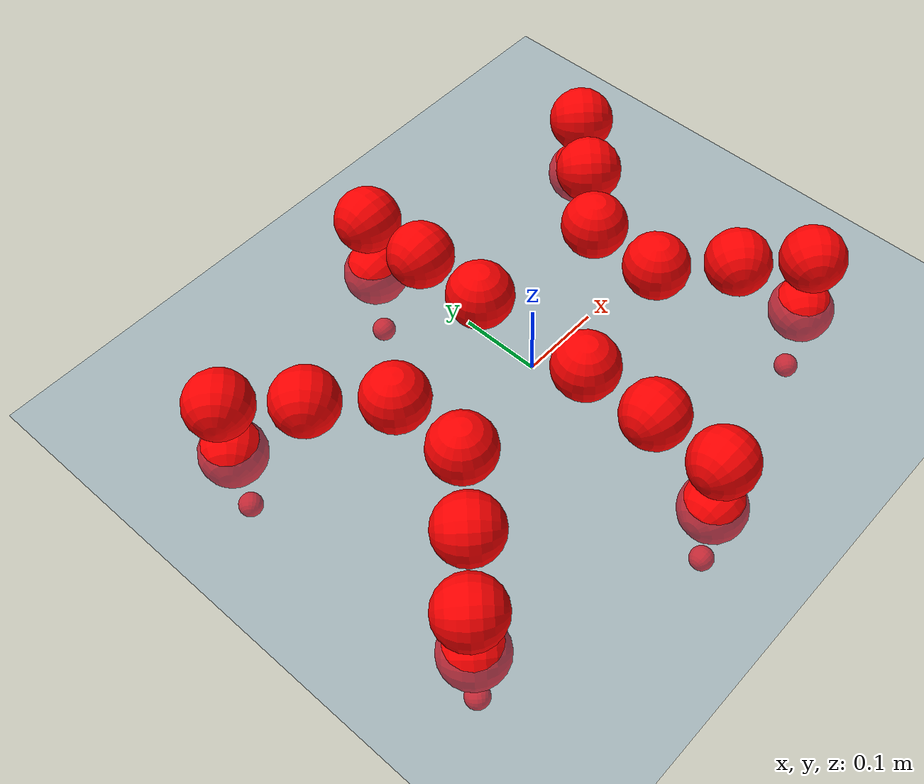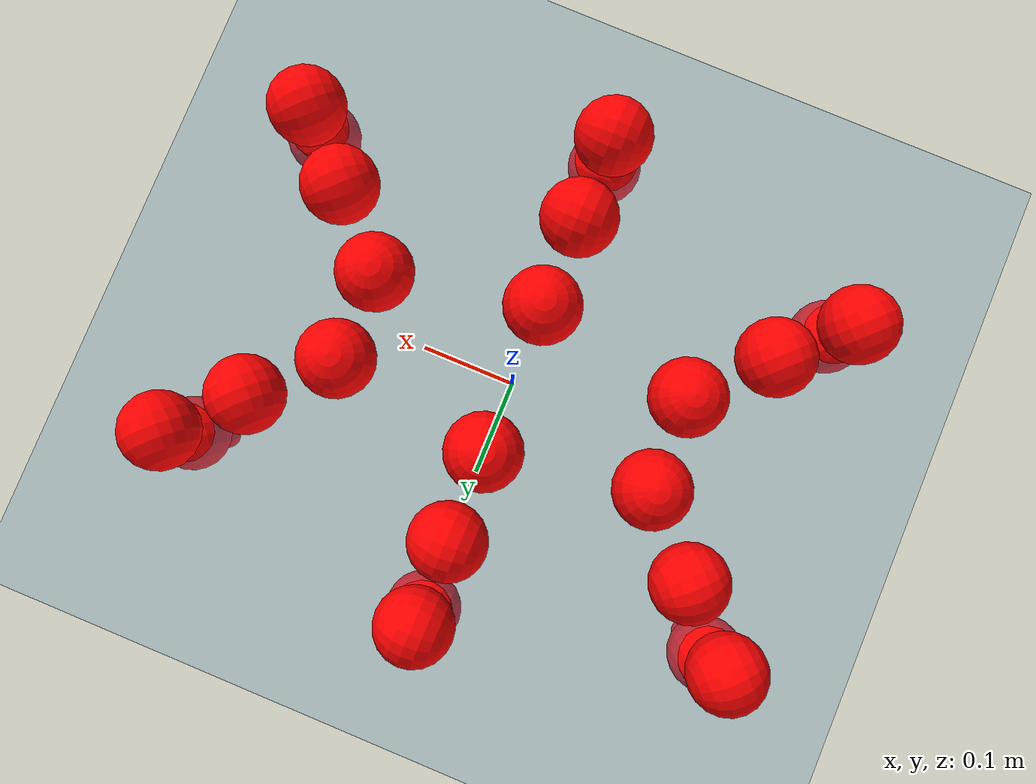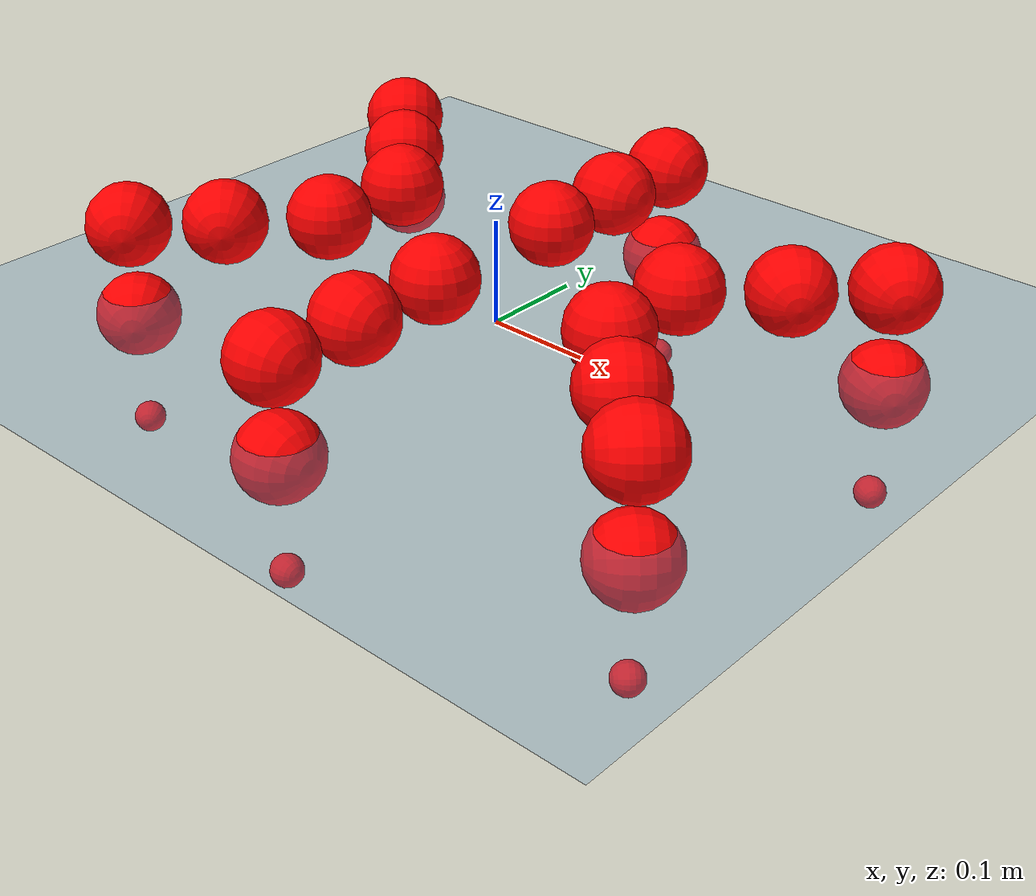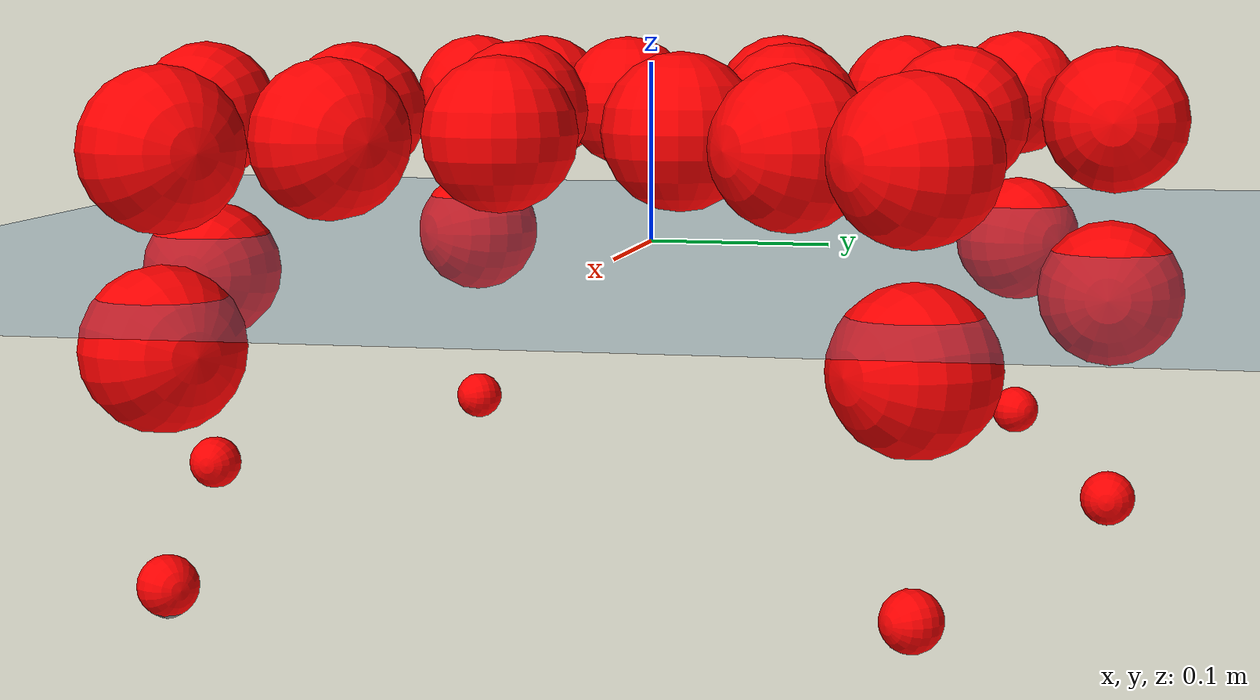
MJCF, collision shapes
<mujoco model="Golem">
  <compiler angle="radian" assetdir="assets" balanceinertia="true" inertiafromgeom="false"/>

  <option timestep="0.005" density="1.2" viscosity="2e-05"/>

  <size nkey="1"/>

  <visual>
    <quality shadowsize="8192"/>
    <map shadowclip="0.5"/>
  </visual>

  <default>
    <default class="/">
      <joint armature="0.01" damping="0.01" frictionloss="0.01"/>
      <geom contype="0" conaffinity="0" group="1" solref="-1000 -80"/>
      <site size="0.01 0.005 0.005" group="5"/>
      <general forcelimited="true" biastype="affine" gainprm="25" biasprm="0 -25 -0.5"/>
      <default class="visual">
        <geom type="mesh" group="2"/>
      </default>
      <default class="collision">
        <geom group="3"/>
      </default>
      <default class="foot">
        <geom size="0.01 0 0" condim="6" group="4" priority="1" solimp="0.015 1 0.01"/>
      </default>
      <default class="reward_collision_sphere">
        <geom group="5" rgba="1 0 0 1"/>
      </default>
    </default>
  </default>

  <asset>
    <texture type="skybox" colorspace="auto" name="//unnamed_texture_0" builtin="gradient" rgb1="0.95 0.95 0.95" rgb2="0.95 0.95 0.95" width="100" height="600"/>
    <texture type="2d" colorspace="auto" name="texplane" builtin="checker" rgb1="0.345 0.575 0.748" rgb2="0.345 0.575 0.748" markrgb="1 1 1" width="512" height="512"/>
    <material name="MatPlane" class="/" texture="texplane" texuniform="true" texrepeat="2 2" specular="0.9"/>
    <mesh name="body" class="/" file="body.stl" scale="0.001 0.001 0.001"/>
    <mesh name="coxa" class="/" file="coxa.stl" scale="0.001 0.001 0.001"/>
    <mesh name="femur" class="/" file="femur.stl" scale="0.001 0.001 0.001"/>
    <mesh name="tibia" class="/" file="tibia.stl" scale="0.001 0.001 0.001"/>
    <mesh name="tarsus" class="/" file="tarsus.stl" scale="0.001 0.001 0.001"/>
  </asset>

  <worldbody>
    <geom name="floor" class="/" size="100 100 0.125" type="plane" group="0" material="MatPlane"/>
    <light name="toplight_shadow" class="/" pos="0 0 5" dir="0.0990148 0.0990148 -0.990148" type="directional" ambient="0.04 0.04 0.04" diffuse="0.55 0.55 0.55" specular="0.12 0.12 0.12"/>
    <light name="toplight_fill" class="/" pos="0 0 5" dir="0.0990148 0.0990148 -0.990148" type="directional" castshadow="false" ambient="0.04 0.04 0.04" diffuse="0.3 0.3 0.3" specular="0.08 0.08 0.08"/>
    <body name="trunk" pos="-0.000315772 0.000114913 -0.000260632" quat="1 0.000126382 0.000300902 -0.000297984">
      <inertial pos="0.000644188 -2.64306e-06 -0.00498124" quat="1 -1.75654e-05 1.15987e-05 -1.2524e-05" mass="3.63851" diaginertia="0.0131311 0.00386684 0.0170858"/>
      <joint name="//unnamed_joint_0" type="free"/>
      <geom name="//unnamed_geom_1" class="/" pos="0 0 0.071203" quat="1 0 0 0" type="mesh" rgba="0.9 0.9 0.9 1" mesh="body"/>
      <site name="imu" class="/" pos="0.144927 0.00150443 0.112828" size="0.00999437"/>
      <camera name="track" class="/" pos="0 -1.65808 0" quat="0.707107 0.707107 0 0" mode="trackcom"/>
      <camera name="ego_camera" class="/" pos="0.137374 0 0.111255" quat="-0.5 -0.5 0.5 0.5"/>
      <body name="coxa_RR" pos="-0.187224 -0.0705383 0.070636" quat="0.382248 6.88792e-05 -0.000216726 -0.92406">
        <inertial pos="1.51452e-05 0.000128687 -0.000341543" quat="0.999999 -0.000641922 0.000640012 -0.00124096" mass="0.197435" diaginertia="0.0130169 0.00390167 0.0163368"/>
        <joint name="coxa_joint_RR" class="/" pos="0 0 0" axis="0.000892105 -0.00292698 -0.999995" range="-3.13582 3.15719" armature="0.00993509" damping="0.0104828" frictionloss="0.00971841"/>
        <geom name="//unnamed_geom_2" class="/" type="mesh" rgba="0.2 0.2 0.2 1" mesh="coxa"/>
        <geom name="//unnamed_geom_3" class="reward_collision_sphere" size="0.0399775" pos="-0.0317017 0 0"/>
        <body name="femur_RR" pos="0.0638352 0.00302839 -0.00131164" quat="0.499983 -0.500031 0.500042 0.499945">
          <inertial pos="-0.00236573 -0.000150644 -0.00256234" quat="0.999925 -0.00291267 0.0085588 0.00821618" mass="0.196132" diaginertia="0.0129873 0.0038399 0.0166582"/>
          <joint name="femur_joint_RR" class="/" pos="0 0 0" axis="-0.00466213 0.00210032 -0.999987" stiffness="0.00538697" range="-3.12099 3.13425" armature="0.0097395" damping="0" frictionloss="0.0100388"/>
          <geom name="//unnamed_geom_4" class="/" type="mesh" rgba="0.9 0.9 0.9 1" mesh="femur"/>
          <geom name="//unnamed_geom_5" class="reward_collision_sphere" size="0.0399775"/>
          <body name="tibia_RR" pos="0.00164602 -0.0892348 -0.00172512" quat="-0.00026977 1 -2.04863e-05 -0.000312738">
            <inertial pos="-0.000250478 0.000143964 -0.00171513" quat="1 0.000100784 -0.000754739 7.26476e-05" mass="0.203655" diaginertia="0.0136589 0.00408506 0.0176141"/>
            <joint name="tibia_joint_RR" class="/" pos="0 0 0" axis="0.00645109 0.00499063 0.999967" range="-3.13818 3.13979" armature="0.0103515" damping="0.00183092" frictionloss="0.0094358"/>
            <geom name="//unnamed_geom_6" class="/" type="mesh" rgba="0.2 0.2 0.2 1" mesh="tibia"/>
            <geom name="//unnamed_geom_7" class="reward_collision_sphere" size="0.0399775"/>
            <body name="tarsus_RR" pos="0.0921511 -0.000649168 -0.000671774" quat="1 -8.02721e-05 5.36298e-05 3.41956e-05">
              <inertial pos="0.0655347 0.000617019 -0.000193389" quat="0.506427 0.501304 0.502181 0.489938" mass="0.205375" diaginertia="0.0129938 0.0039044 0.017379"/>
              <joint name="tarsus_joint_RR" class="/" pos="0 0 0" axis="-0.00369087 0.00671911 0.999971" range="-3.14675 3.13368" armature="0.0104655" damping="0.0407703" frictionloss="0.00953882"/>
              <geom name="//unnamed_geom_8" class="/" type="mesh" rgba="0.9 0.9 0.9 1" mesh="tarsus"/>
              <geom name="foot_1" class="foot" size="0.00977769" pos="0.118353 0 0" quat="0 -0.707107 0 0.707107"/>
              <geom name="//unnamed_geom_10" class="reward_collision_sphere" size="0.0399775"/>
              <geom name="//unnamed_geom_11" class="reward_collision_sphere" size="0.0149916" pos="0.113598 0 0"/>
              <site name="foot_1" class="foot" pos="0.118353 0 0" quat="0 -0.707107 0 0.707107" size="0.00999437"/>
            </body>
          </body>
        </body>
      </body>
      <body name="coxa_RM" pos="0.000138151 -0.10897 0.0724081" quat="0.707525 -0.000990163 -0.000350795 -0.706688">
        <inertial pos="-0.00121544 -0.00021324 -0.00187189" quat="0.999989 -0.00306812 -0.00219535 0.00291076" mass="0.200194" diaginertia="0.0128065 0.00390497 0.0171471"/>
        <joint name="coxa_joint_RM" class="/" pos="0 0 0" axis="0.00242755 6.25975e-05 -0.999997" range="-3.13141 3.12971" armature="0.0100531" damping="0.00954181" frictionloss="0.0104354"/>
        <geom name="//unnamed_geom_12" class="/" type="mesh" rgba="0.2 0.2 0.2 1" mesh="coxa"/>
        <geom name="//unnamed_geom_13" class="reward_collision_sphere" size="0.0399775" pos="-0.0317017 0 0"/>
        <body name="femur_RM" pos="0.0633689 -9.9155e-05 -0.00144685" quat="0.500082 -0.499833 0.500147 0.499937">
          <inertial pos="0.00218386 -0.000409617 -6.44439e-06" quat="0.99993 0.00301018 -0.00391012 0.0107394" mass="0.2012" diaginertia="0.0130321 0.00384723 0.0170299"/>
          <joint name="femur_joint_RM" class="/" pos="0 0 0" axis="0.00627156 -0.00260963 -0.999977" range="-3.14012 3.13764" armature="0.00948152" damping="0.00600506" frictionloss="0.00973878"/>
          <geom name="//unnamed_geom_14" class="/" type="mesh" rgba="0.9 0.9 0.9 1" mesh="femur"/>
          <geom name="//unnamed_geom_15" class="reward_collision_sphere" size="0.0399775"/>
          <body name="tibia_RM" pos="0.000333503 -0.0895823 -0.000644575" quat="6.70733e-05 1 -0.000153158 -0.000130739">
            <inertial pos="-0.00228869 -0.00116359 8.80158e-05" quat="1 -2.23668e-06 2.83743e-05 0.000118813" mass="0.197248" diaginertia="0.0132518 0.00384133 0.0163893"/>
            <joint name="tibia_joint_RM" class="/" pos="0 0 0" axis="-0.000214023 0.000916987 1" range="-3.1345 3.15849" armature="0.0100274" damping="0.0127491" frictionloss="0.0105041"/>
            <geom name="//unnamed_geom_16" class="/" type="mesh" rgba="0.2 0.2 0.2 1" mesh="tibia"/>
            <geom name="//unnamed_geom_17" class="reward_collision_sphere" size="0.0399775"/>
            <body name="tarsus_RM" pos="0.0925488 -0.0011626 0.000158933" quat="1 0.000162198 -1.101e-05 0.000149391">
              <inertial pos="0.0637393 0.000124808 -0.000276445" quat="0.500032 0.498053 0.501121 0.500788" mass="0.19845" diaginertia="0.0127076 0.00387657 0.0170289"/>
              <joint name="tarsus_joint_RM" class="/" pos="0 0 0" axis="-0.00123695 0.00567909 0.999983" range="-3.12856 3.13715" armature="0.00989997" damping="0.0059629" frictionloss="0.0102591"/>
              <geom name="//unnamed_geom_18" class="/" type="mesh" rgba="0.9 0.9 0.9 1" mesh="tarsus"/>
              <geom name="foot_2" class="foot" size="0.00929345" pos="0.118353 0 0" quat="0 -0.707107 0 0.707107"/>
              <geom name="//unnamed_geom_20" class="reward_collision_sphere" size="0.0399775"/>
              <geom name="//unnamed_geom_21" class="reward_collision_sphere" size="0.0149916" pos="0.113598 0 0"/>
              <site name="foot_2" class="foot" pos="0.118353 0 0" quat="0 -0.707107 0 0.707107" size="0.00999437"/>
            </body>
          </body>
        </body>
      </body>
      <body name="coxa_RF" pos="0.188358 -0.0671876 0.0697891" quat="0.923909 0.000241137 0.000221916 -0.382613">
        <inertial pos="-0.00237884 -0.000441566 0.000815147" quat="0.999969 -0.00226242 -0.00332453 -0.00680043" mass="0.20351" diaginertia="0.0130077 0.00376323 0.0167851"/>
        <joint name="coxa_joint_RF" class="/" pos="0 0 0" axis="-0.00105417 0.00238929 -0.999997" range="-3.12088 3.1405" armature="0.0104316" damping="0.0099282" frictionloss="0.0105134"/>
        <geom name="//unnamed_geom_22" class="/" type="mesh" rgba="0.2 0.2 0.2 1" mesh="coxa"/>
        <geom name="//unnamed_geom_23" class="reward_collision_sphere" size="0.0399775" pos="-0.0317017 0 0"/>
        <body name="femur_RF" pos="0.063094 -0.000897818 0.0007194" quat="0.499734 -0.499765 0.500558 0.499942">
          <inertial pos="-0.000306207 0.00219409 -0.000307315" quat="0.999996 -0.00236467 -0.0004683 -0.00135511" mass="0.199059" diaginertia="0.0132474 0.00385169 0.0169954"/>
          <joint name="femur_joint_RF" class="/" pos="0 0 0" axis="0.00123183 -0.000148771 -0.999999" range="-3.14117 3.12919" armature="0.0100737" damping="0.00717737" frictionloss="0.0103914"/>
          <geom name="//unnamed_geom_24" class="/" type="mesh" rgba="0.9 0.9 0.9 1" mesh="femur"/>
          <geom name="//unnamed_geom_25" class="reward_collision_sphere" size="0.0399775"/>
          <body name="tibia_RF" pos="0.00156797 -0.0880151 0.000833282" quat="0.000169062 1 0.000276577 -0.000313352">
            <inertial pos="-0.0016608 -0.00119369 0.00199194" quat="0.999999 0.000491735 -0.00098552 -0.000441071" mass="0.201613" diaginertia="0.0132126 0.00394309 0.0170011"/>
            <joint name="tibia_joint_RF" class="/" pos="0 0 0" axis="-0.000139596 -0.00017935 1" range="-3.1318 3.1198" armature="0.00987527" damping="0.000830679" frictionloss="0.0101987"/>
            <geom name="//unnamed_geom_26" class="/" type="mesh" rgba="0.2 0.2 0.2 1" mesh="tibia"/>
            <geom name="//unnamed_geom_27" class="reward_collision_sphere" size="0.0399775"/>
            <body name="tarsus_RF" pos="0.0937049 0.00187955 -0.00146337" quat="1 -3.88719e-05 -0.000260585 0.000128914">
              <inertial pos="0.0617453 0.000268504 -0.000500729" quat="0.49767 0.500767 0.501456 0.500099" mass="0.196506" diaginertia="0.0130002 0.00402512 0.0167029"/>
              <joint name="tarsus_joint_RF" class="/" pos="0 0 0" axis="0.00729528 -0.00405919 0.999965" range="-3.1308 3.14195" armature="0.0105765" damping="0" frictionloss="0.0112503"/>
              <geom name="//unnamed_geom_28" class="/" type="mesh" rgba="0.9 0.9 0.9 1" mesh="tarsus"/>
              <geom name="foot_3" class="foot" size="0.010812" pos="0.118353 0 0" quat="0 -0.707107 0 0.707107"/>
              <geom name="//unnamed_geom_30" class="reward_collision_sphere" size="0.0399775"/>
              <geom name="//unnamed_geom_31" class="reward_collision_sphere" size="0.0149916" pos="0.113598 0 0"/>
              <site name="foot_3" class="foot" pos="0.118353 0 0" quat="0 -0.707107 0 0.707107" size="0.00999437"/>
            </body>
          </body>
        </body>
      </body>
      <body name="coxa_LR" pos="-0.188191 0.0707937 0.0717661" quat="0.383046 0.000501729 -0.000580871 0.923729">
        <inertial pos="5.27177e-05 -0.00102046 -0.00198323" quat="0.999984 0.000170798 -0.00104477 -0.00554336" mass="0.189722" diaginertia="0.0127409 0.00378277 0.0164186"/>
        <joint name="coxa_joint_LR" class="/" pos="0 0 0" axis="-0.000408245 -0.000470615 -1" range="-3.11996 3.18821" armature="0.0105463" damping="0.0110818" frictionloss="0.00876497"/>
        <geom name="//unnamed_geom_32" class="/" type="mesh" rgba="0.2 0.2 0.2 1" mesh="coxa"/>
        <geom name="//unnamed_geom_33" class="reward_collision_sphere" size="0.0399775" pos="-0.0317017 0 0"/>
        <body name="femur_LR" pos="0.0642187 -0.00184125 -0.00154537" quat="0.500111 -0.500016 0.49995 0.499923">
          <inertial pos="-0.000415441 -0.000845391 -0.000618675" quat="0.999999 0.00088121 0.000435238 -0.000727481" mass="0.200373" diaginertia="0.0133879 0.00405622 0.0172334"/>
          <joint name="femur_joint_LR" class="/" pos="0 0 0" axis="-0.00589642 0.000124735 0.999983" range="-3.12885 3.11699" armature="0.0102144" damping="0.0101309" frictionloss="0.0104827"/>
          <geom name="//unnamed_geom_34" class="/" type="mesh" rgba="0.9 0.9 0.9 1" mesh="femur"/>
          <geom name="//unnamed_geom_35" class="reward_collision_sphere" size="0.0399775"/>
          <body name="tibia_LR" pos="-0.00125024 -0.0910402 -0.000775544" quat="0.000409813 1 0.000196459 0.000376261">
            <inertial pos="5.70601e-05 0.00246457 -9.57469e-05" quat="0.999979 -0.00194205 -0.00490294 -0.00366254" mass="0.196312" diaginertia="0.0134965 0.00395815 0.0164053"/>
            <joint name="tibia_joint_LR" class="/" pos="0 0 0" axis="-0.00321343 0.00249232 -0.999992" range="-3.13331 3.13657" armature="0.00947282" damping="0.00176922" frictionloss="0.00985452"/>
            <geom name="//unnamed_geom_36" class="/" type="mesh" rgba="0.2 0.2 0.2 1" mesh="tibia"/>
            <geom name="//unnamed_geom_37" class="reward_collision_sphere" size="0.0399775"/>
            <body name="tarsus_LR" pos="0.0949785 0.00143978 0.00123541" quat="1 -0.000168942 4.95053e-05 -0.000436562">
              <inertial pos="0.0648093 0.000355412 0.00116193" quat="0.498677 0.500706 0.497817 0.502785" mass="0.192144" diaginertia="0.0127373 0.00377883 0.0164825"/>
              <joint name="tarsus_joint_LR" class="/" pos="0 0 0" axis="0.00296111 0.000471821 -0.999996" range="-3.13703 3.14698" armature="0.00864843" damping="0.0280676" frictionloss="0.0105184"/>
              <geom name="//unnamed_geom_38" class="/" type="mesh" rgba="0.9 0.9 0.9 1" mesh="tarsus"/>
              <geom name="foot_4" class="foot" size="0.00966115" pos="0.118353 0 0" quat="0.707107 0 -0.707107 0"/>
              <geom name="//unnamed_geom_40" class="reward_collision_sphere" size="0.0399775"/>
              <geom name="//unnamed_geom_41" class="reward_collision_sphere" size="0.0149916" pos="0.113598 0 0"/>
              <site name="foot_4" class="foot" pos="0.118353 0 0" quat="0.707107 0 -0.707107 0" size="0.00999437"/>
            </body>
          </body>
        </body>
      </body>
      <body name="coxa_LM" pos="-0.00114842 0.108876 0.0717283" quat="0.707531 0.000598927 -0.000724146 0.706682">
        <inertial pos="0.00200827 -0.00199224 0.00110933" quat="0.999972 -0.00255931 -0.0041168 0.00572795" mass="0.200978" diaginertia="0.0128811 0.00390049 0.016981"/>
        <joint name="coxa_joint_LM" class="/" pos="0 0 0" axis="-0.00267704 0.000168305 -0.999996" range="-3.13263 3.13387" armature="0.0111736" damping="0" frictionloss="0.00948162"/>
        <geom name="//unnamed_geom_42" class="/" type="mesh" rgba="0.2 0.2 0.2 1" mesh="coxa"/>
        <geom name="//unnamed_geom_43" class="reward_collision_sphere" size="0.0399775" pos="-0.0317017 0 0"/>
        <body name="femur_LM" pos="0.0610748 0.00135123 -0.000600142" quat="0.500161 -0.499839 0.499865 0.500136">
          <inertial pos="-0.00153652 0.000126936 -0.00202377" quat="1 -0.000554625 -0.000163718 -0.000324315" mass="0.206103" diaginertia="0.01337 0.00396756 0.0172046"/>
          <joint name="femur_joint_LM" class="/" pos="0 0 0" axis="-0.00466287 0.00424114 0.99998" range="-3.13662 3.12134" armature="0.0101535" damping="0.00573623" frictionloss="0.00998674"/>
          <geom name="//unnamed_geom_44" class="/" type="mesh" rgba="0.9 0.9 0.9 1" mesh="femur"/>
          <geom name="//unnamed_geom_45" class="reward_collision_sphere" size="0.0399775"/>
          <body name="tibia_LM" pos="0.000552491 -0.0860334 0.00151746" quat="2.82713e-05 1 -0.00015898 0.000170951">
            <inertial pos="0.00233397 -0.000563286 0.00248963" quat="0.999999 0.000162322 -0.000702107 -0.00128287" mass="0.198808" diaginertia="0.0132388 0.00380272 0.0171376"/>
            <joint name="tibia_joint_LM" class="/" pos="0 0 0" axis="-0.00245414 -0.00125168 -0.999996" range="-3.15921 3.13493" armature="0.0102487" damping="0.000214608" frictionloss="0.00945896"/>
            <geom name="//unnamed_geom_46" class="/" type="mesh" rgba="0.2 0.2 0.2 1" mesh="tibia"/>
            <geom name="//unnamed_geom_47" class="reward_collision_sphere" size="0.0399775"/>
            <body name="tarsus_LM" pos="0.0945525 -0.00140886 0.000657061" quat="1 -4.39377e-05 0.000108272 0.00012162">
              <inertial pos="0.0630651 -0.000184657 9.25639e-05" quat="0.499209 0.498615 0.500423 0.501748" mass="0.205476" diaginertia="0.0131978 0.00416396 0.0177633"/>
              <joint name="tarsus_joint_LM" class="/" pos="0 0 0" axis="-0.00358436 -0.00351652 -0.999987" stiffness="0.00241879" range="-3.19033 3.14412" armature="0.0101808" damping="0.00392167" frictionloss="0.0101097"/>
              <geom name="//unnamed_geom_48" class="/" type="mesh" rgba="0.9 0.9 0.9 1" mesh="tarsus"/>
              <geom name="foot_5" class="foot" size="0.0101025" pos="0.118353 0 0" quat="0.707107 0 -0.707107 0"/>
              <geom name="//unnamed_geom_50" class="reward_collision_sphere" size="0.0399775"/>
              <geom name="//unnamed_geom_51" class="reward_collision_sphere" size="0.0149916" pos="0.113598 0 0"/>
              <site name="foot_5" class="foot" pos="0.118353 0 0" quat="0.707107 0 -0.707107 0" size="0.00999437"/>
            </body>
          </body>
        </body>
      </body>
      <body name="coxa_LF" pos="0.188903 0.0706402 0.0720738" quat="0.92374 -0.000978107 -0.000362819 0.383019">
        <inertial pos="-7.54542e-06 0.00255746 0.000374786" quat="0.999999 0.000416725 0.000471926 -0.00156324" mass="0.202489" diaginertia="0.013578 0.0040945 0.017498"/>
        <joint name="coxa_joint_LF" class="/" pos="0 0 0" axis="0.0044316 -0.00393306 -0.999982" range="-3.13425 3.14906" armature="0.0112478" damping="0" frictionloss="0.00951304"/>
        <geom name="//unnamed_geom_52" class="/" type="mesh" rgba="0.2 0.2 0.2 1" mesh="coxa"/>
        <geom name="//unnamed_geom_53" class="reward_collision_sphere" size="0.0399775" pos="-0.0317017 0 0"/>
        <body name="femur_LF" pos="0.0638515 -0.00195775 -0.00310693" quat="0.500222 -0.499392 0.499936 0.500449">
          <inertial pos="0.000498839 0.000505387 0.00254931" quat="0.999958 -0.00301361 -0.0051698 -0.00700441" mass="0.20069" diaginertia="0.0131441 0.00403788 0.016913"/>
          <joint name="femur_joint_LF" class="/" pos="0 0 0" axis="-0.00202107 -0.00341336 0.999992" range="-3.13291 3.09176" armature="0.00986777" damping="0" frictionloss="0.00963033"/>
          <geom name="//unnamed_geom_54" class="/" type="mesh" rgba="0.9 0.9 0.9 1" mesh="femur"/>
          <geom name="//unnamed_geom_55" class="reward_collision_sphere" size="0.0399775"/>
          <body name="tibia_LF" pos="0.000240099 -0.0899331 0.000930319" quat="-0.000709705 1 0.000437416 0.000311768">
            <inertial pos="-0.000837857 -0.00212599 0.000255923" quat="1 7.81375e-05 -0.000111168 -5.53185e-05" mass="0.199255" diaginertia="0.0132093 0.00390691 0.0172393"/>
            <joint name="tibia_joint_LF" class="/" pos="0 0 0" axis="-0.00135079 -0.0099035 -0.99995" range="-3.17173 3.14947" armature="0.010169" damping="0.000386057" frictionloss="0.011045"/>
            <geom name="//unnamed_geom_56" class="/" type="mesh" rgba="0.2 0.2 0.2 1" mesh="tibia"/>
            <geom name="//unnamed_geom_57" class="reward_collision_sphere" size="0.0399775"/>
            <body name="tarsus_LF" pos="0.093792 0.000603433 -0.000197457" quat="0.999999 -0.000228944 0.000917122 -0.000868442">
              <inertial pos="0.064802 8.71233e-05 1.05214e-05" quat="0.498961 0.502145 0.500143 0.498744" mass="0.200172" diaginertia="0.0127355 0.00380958 0.0167165"/>
              <joint name="tarsus_joint_LF" class="/" pos="0 0 0" axis="-0.00628754 -0.0133989 -0.99989" stiffness="0.0283905" range="-3.1586 3.10652" armature="0.00945454" damping="0.0287433" frictionloss="0.00971926"/>
              <geom name="//unnamed_geom_58" class="/" type="mesh" rgba="0.9 0.9 0.9 1" mesh="tarsus"/>
              <geom name="foot_6" class="foot" size="0.0092845" pos="0.118353 0 0" quat="0.707107 0 -0.707107 0"/>
              <geom name="//unnamed_geom_60" class="reward_collision_sphere" size="0.0399775"/>
              <geom name="//unnamed_geom_61" class="reward_collision_sphere" size="0.0149916" pos="0.113598 0 0"/>
              <site name="foot_6" class="foot" pos="0.118353 0 0" quat="0.707107 0 -0.707107 0" size="0.00999437"/>
            </body>
          </body>
        </body>
      </body>
    </body>
  </worldbody>

  <contact>
    <pair class="/" geom1="floor" geom2="foot_1" name="//unnamed_contact_0"/>
    <pair class="/" geom1="floor" geom2="foot_2" name="//unnamed_contact_1"/>
    <pair class="/" geom1="floor" geom2="foot_3" name="//unnamed_contact_2"/>
    <pair class="/" geom1="floor" geom2="foot_4" name="//unnamed_contact_3"/>
    <pair class="/" geom1="floor" geom2="foot_5" name="//unnamed_contact_4"/>
    <pair class="/" geom1="floor" geom2="foot_6" name="//unnamed_contact_5"/>
  </contact>

  <actuator>
    <general name="coxa_joint_RR" class="/" joint="coxa_joint_RR" forcerange="-6.66935 6.66935" gainprm="24.1294" biasprm="0 -24.1294 -0.515652"/>
    <general name="femur_joint_RR" class="/" joint="femur_joint_RR" forcerange="-7.09771 7.09771" gainprm="24.1294" biasprm="0 -24.1294 -0.515652"/>
    <general name="tibia_joint_RR" class="/" joint="tibia_joint_RR" forcerange="-6.61506 6.61506" gainprm="24.1294" biasprm="0 -24.1294 -0.515652"/>
    <general name="tarsus_joint_RR" class="/" joint="tarsus_joint_RR" forcerange="-7.20473 7.20473" gainprm="24.1294" biasprm="0 -24.1294 -0.515652"/>
    <general name="coxa_joint_RM" class="/" joint="coxa_joint_RM" forcerange="-7.274 7.274" gainprm="24.1294" biasprm="0 -24.1294 -0.515652"/>
    <general name="femur_joint_RM" class="/" joint="femur_joint_RM" forcerange="-7.27978 7.27978" gainprm="24.1294" biasprm="0 -24.1294 -0.515652"/>
    <general name="tibia_joint_RM" class="/" joint="tibia_joint_RM" forcerange="-6.75044 6.75044" gainprm="24.1294" biasprm="0 -24.1294 -0.515652"/>
    <general name="tarsus_joint_RM" class="/" joint="tarsus_joint_RM" forcerange="-7.96375 7.96375" gainprm="24.1294" biasprm="0 -24.1294 -0.515652"/>
    <general name="coxa_joint_RF" class="/" joint="coxa_joint_RF" forcerange="-7.15198 7.15198" gainprm="24.1294" biasprm="0 -24.1294 -0.515652"/>
    <general name="femur_joint_RF" class="/" joint="femur_joint_RF" forcerange="-7.28303 7.28303" gainprm="24.1294" biasprm="0 -24.1294 -0.515652"/>
    <general name="tibia_joint_RF" class="/" joint="tibia_joint_RF" forcerange="-7.90646 7.90646" gainprm="24.1294" biasprm="0 -24.1294 -0.515652"/>
    <general name="tarsus_joint_RF" class="/" joint="tarsus_joint_RF" forcerange="-7.07256 7.07256" gainprm="24.1294" biasprm="0 -24.1294 -0.515652"/>
    <general name="coxa_joint_LR" class="/" joint="coxa_joint_LR" forcerange="-7.25706 7.25706" gainprm="24.1294" biasprm="0 -24.1294 -0.515652"/>
    <general name="femur_joint_LR" class="/" joint="femur_joint_LR" forcerange="-6.89683 6.89683" gainprm="24.1294" biasprm="0 -24.1294 -0.515652"/>
    <general name="tibia_joint_LR" class="/" joint="tibia_joint_LR" forcerange="-7.52957 7.52957" gainprm="24.1294" biasprm="0 -24.1294 -0.515652"/>
    <general name="tarsus_joint_LR" class="/" joint="tarsus_joint_LR" forcerange="-7.17851 7.17851" gainprm="24.1294" biasprm="0 -24.1294 -0.515652"/>
    <general name="coxa_joint_LM" class="/" joint="coxa_joint_LM" forcerange="-7.52759 7.52759" gainprm="24.1294" biasprm="0 -24.1294 -0.515652"/>
    <general name="femur_joint_LM" class="/" joint="femur_joint_LM" forcerange="-7.54854 7.54854" gainprm="24.1294" biasprm="0 -24.1294 -0.515652"/>
    <general name="tibia_joint_LM" class="/" joint="tibia_joint_LM" forcerange="-7.06132 7.06132" gainprm="24.1294" biasprm="0 -24.1294 -0.515652"/>
    <general name="tarsus_joint_LM" class="/" joint="tarsus_joint_LM" forcerange="-7.42793 7.42793" gainprm="24.1294" biasprm="0 -24.1294 -0.515652"/>
    <general name="coxa_joint_LF" class="/" joint="coxa_joint_LF" forcerange="-7.58013 7.58013" gainprm="24.1294" biasprm="0 -24.1294 -0.515652"/>
    <general name="femur_joint_LF" class="/" joint="femur_joint_LF" forcerange="-7.07713 7.07713" gainprm="24.1294" biasprm="0 -24.1294 -0.515652"/>
    <general name="tibia_joint_LF" class="/" joint="tibia_joint_LF" forcerange="-7.43175 7.43175" gainprm="24.1294" biasprm="0 -24.1294 -0.515652"/>
    <general name="tarsus_joint_LF" class="/" joint="tarsus_joint_LF" forcerange="-7.54086 7.54086" gainprm="24.1294" biasprm="0 -24.1294 -0.515652"/>
  </actuator>

  <sensor>
    <gyro site="imu" name="imu_angular_velocity"/>
    <velocimeter site="imu" name="imu_linear_velocity"/>
    <framelinvel objtype="site" objname="foot_1" name="foot_1_global_linear_velocity"/>
    <framelinvel objtype="site" objname="foot_2" name="foot_2_global_linear_velocity"/>
    <framelinvel objtype="site" objname="foot_3" name="foot_3_global_linear_velocity"/>
    <framelinvel objtype="site" objname="foot_4" name="foot_4_global_linear_velocity"/>
    <framelinvel objtype="site" objname="foot_5" name="foot_5_global_linear_velocity"/>
    <framelinvel objtype="site" objname="foot_6" name="foot_6_global_linear_velocity"/>
  </sensor>

  <keyframe>
    <key name="home" qpos="0 0 0.1457 1 0 0 0 0 0 0 0 0 0 0 0 0 0 0 0 0 0 0 0 0 0 0 0 0 0 0 0"/>
  </keyframe>
</mujoco>
